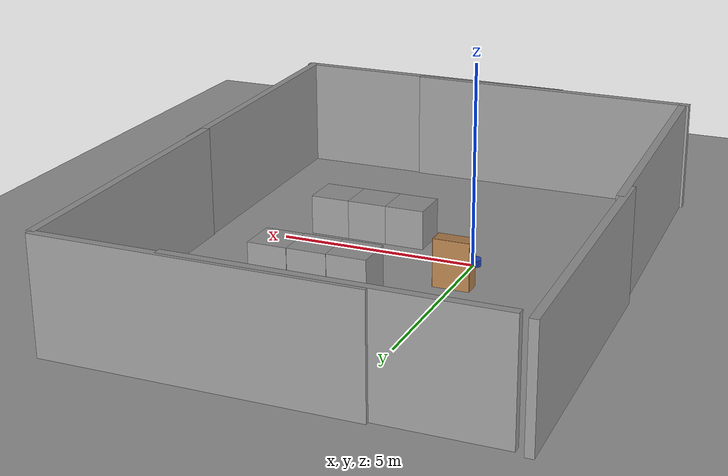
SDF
<sdf version="1.6">
 <world name="default">
  <light name="sun" type="directional">
   <pose>0 0 10 0 -0 0</pose>
   <diffuse>0.8 0.8 0.8 1</diffuse>
   <specular>0.2 0.2 0.2 1</specular>
   <attenuation>
    <range>1000</range>
    <constant>0.9</constant>
    <linear>0.01</linear>
    <quadratic>0.001</quadratic>
   </attenuation>
   <direction>0.5 0.1 -0.9</direction>
  </light>
  <scene><ambient>0.4 0.4 0.4 1</ambient><background>0.7 0.7 0.7 1</background><shadows>1</shadows></scene>
  <physics name="default_physics" default="0" type="ode">
   <max_step_size>0.01</max_step_size>
   <real_time_factor>1</real_time_factor>
   <real_time_update_rate>100</real_time_update_rate>
  </physics>
  <model name="bookshelf">
   <static>1</static>
   <link name="link">
    <inertial><mass>1</mass></inertial>
    <collision name="back">
     <pose>0 0.005 0.6 0 -0 0</pose>
     <geometry><box><size>0.9 0.01 1.2</size></box></geometry>
    </collision>
    <visual name="visual1">
     <pose>0 0.005 0.6 0 -0 0</pose>
     <geometry><box><size>0.9 0.01 1.2</size></box></geometry>
     <material>
      <script><uri>file://media/materials/scripts/gazebo.material</uri><name>Gazebo/Wood</name></script>
     </material>
    </visual>
    <collision name="left_side">
     <pose>0.45 -0.195 0.6 0 -0 0</pose>
     <geometry><box><size>0.02 0.4 1.2</size></box></geometry>
    </collision>
    <visual name="visual2">
     <pose>0.45 -0.195 0.6 0 -0 0</pose>
     <geometry><box><size>0.02 0.4 1.2</size></box></geometry>
     <material>
      <script><uri>file://media/materials/scripts/gazebo.material</uri><name>Gazebo/Wood</name></script>
     </material>
    </visual>
    <collision name="right_side">
     <pose>-0.45 -0.195 0.6 0 -0 0</pose>
     <geometry><box><size>0.02 0.4 1.2</size></box></geometry>
    </collision>
    <visual name="visual3">
     <pose>-0.45 -0.195 0.6 0 -0 0</pose>
     <geometry><box><size>0.02 0.4 1.2</size></box></geometry>
     <material>
      <script><uri>file://media/materials/scripts/gazebo.material</uri><name>Gazebo/Wood</name></script>
     </material>
    </visual>
    <collision name="bottom">
     <pose>0 -0.195 0.03 0 -0 0</pose>
     <geometry><box><size>0.88 0.4 0.06</size></box></geometry>
    </collision>
    <visual name="visual4">
     <pose>0 -0.195 0.03 0 -0 0</pose>
     <geometry><box><size>0.88 0.4 0.06</size></box></geometry>
     <material>
      <script><uri>file://media/materials/scripts/gazebo.material</uri><name>Gazebo/Wood</name></script>
     </material>
    </visual>
    <collision name="top">
     <pose>0 -0.195 1.19 0 -0 0</pose>
     <geometry><box><size>0.88 0.4 0.02</size></box></geometry>
    </collision>
    <visual name="visual5">
     <pose>0 -0.195 1.19 0 -0 0</pose>
     <geometry><box><size>0.88 0.4 0.02</size></box></geometry>
     <material>
      <script><uri>file://media/materials/scripts/gazebo.material</uri><name>Gazebo/Wood</name></script>
     </material>
    </visual>
    <collision name="low_shelf">
     <pose>0 -0.195 0.43 0 -0 0</pose>
     <geometry><box><size>0.88 0.4 0.02</size></box></geometry>
    </collision>
    <visual name="visual6">
     <pose>0 -0.195 0.43 0 -0 0</pose>
     <geometry><box><size>0.88 0.4 0.02</size></box></geometry>
     <material>
      <script><uri>file://media/materials/scripts/gazebo.material</uri><name>Gazebo/Wood</name></script>
     </material>
    </visual>
    <collision name="high_shelf">
     <pose>0 -0.195 0.8 0 -0 0</pose>
     <geometry><box><size>0.88 0.4 0.02</size></box></geometry>
    </collision>
    <visual name="visual7">
     <pose>0 -0.195 0.8 0 -0 0</pose>
     <geometry><box><size>0.88 0.4 0.02</size></box></geometry>
     <material>
      <script><uri>file://media/materials/scripts/gazebo.material</uri><name>Gazebo/Wood</name></script>
     </material>
    </visual>
    <velocity_decay><linear>0</linear><angular>0</angular></velocity_decay>
   </link>
   <pose>0 1.53026 0 0 -0 0</pose>
  </model>
  <model name="ground_plane_0">
   <static>1</static>
   <link name="link">
    <collision name="collision">
     <geometry><plane><normal>0 0 1</normal><size>100 100</size></plane></geometry>
     <surface><friction><ode><mu>100</mu><mu2>50</mu2></ode></friction></surface>
    </collision>
    <visual name="visual">
     <cast_shadows>0</cast_shadows>
     <geometry><plane><normal>0 0 1</normal><size>100 100</size></plane></geometry>
     <material>
      <script><uri>file://media/materials/scripts/gazebo.material</uri><name>Gazebo/Grey</name></script>
     </material>
    </visual>
    <velocity_decay><linear>0</linear><angular>0</angular></velocity_decay>
   </link>
   <pose>0.497681 0 0 0 -0 0</pose>
  </model>
  <gravity>0 0 -9.8</gravity>
  <magnetic_field>6e-06 2.3e-05 -4.2e-05</magnetic_field>
  <atmosphere type="adiabatic"/>
  <spherical_coordinates>
   <surface_model>EARTH_WGS84</surface_model>
   <latitude_deg>0</latitude_deg>
   <longitude_deg>0</longitude_deg>
   <elevation>0</elevation>
   <heading_deg>0</heading_deg>
  </spherical_coordinates>
  <model name="mbot">
   <link name="base_footprint">
    <inertial>
     <pose>0 0 0.110522 0 -0 0</pose>
     <mass>20.1</mass>
     <inertia><ixx>0.253764</ixx><ixy>0</ixy><ixz>0</ixz><iyy>0.253764</iyy><iyz>0</iyz><izz>0.41</izz></inertia>
    </inertial>
    <collision name="base_footprint_fixed_joint_lump__base_link_collision">
     <pose>0 0 0.11 0 -0 0</pose>
     <geometry><cylinder><length>0.16</length><radius>0.2</radius></cylinder></geometry>
    </collision>
    <collision name="base_footprint_fixed_joint_lump__laser_link_collision_1">
     <pose>0 0 0.215 0 -0 0</pose>
     <geometry><cylinder><length>0.06</length><radius>0.05</radius></cylinder></geometry>
    </collision>
    <visual name="base_footprint_visual">
     <geometry><box><size>0.001 0.001 0.001</size></box></geometry>
     <material><script><uri>__default__</uri><name>__default__</name></script></material>
    </visual>
    <visual name="base_footprint_fixed_joint_lump__base_link_visual_1">
     <pose>0 0 0.11 0 -0 0</pose>
     <geometry><cylinder><length>0.16</length><radius>0.2</radius></cylinder></geometry>
     <material>
      <script><name>Gazebo/Blue</name><uri>file://media/materials/scripts/gazebo.material</uri></script>
     </material>
    </visual>
    <visual name="base_footprint_fixed_joint_lump__laser_link_visual_2">
     <pose>0 0 0.215 0 -0 0</pose>
     <geometry><cylinder><length>0.05</length><radius>0.05</radius></cylinder></geometry>
     <material>
      <script><name>Gazebo/Black</name><uri>file://media/materials/scripts/gazebo.material</uri></script>
     </material>
    </visual>
    <sensor name="rplidar" type="ray">
     <visualize>0</visualize>
     <update_rate>5.5</update_rate>
     <ray>
      <scan>
       <horizontal>
        <samples>360</samples>
        <resolution>1</resolution>
        <min_angle>-3</min_angle>
        <max_angle>3</max_angle>
       </horizontal>
       <vertical><samples>1</samples><min_angle>0</min_angle><max_angle>0</max_angle></vertical>
      </scan>
      <range><min>0.1</min><max>6</max><resolution>0.01</resolution></range>
      <noise><type>gaussian</type><mean>0</mean><stddev>0.01</stddev></noise>
     </ray>
     <plugin name="gazebo_rplidar" filename="libgazebo_ros_laser.so">
      <topicName>/scan</topicName>
      <frameName>laser_link</frameName>
      <robotNamespace>/</robotNamespace>
     </plugin>
     <pose>0 0 0.215 0 -0 0</pose>
    </sensor>
   </link>
   <link name="back_caster_link">
    <pose>0.18 0 0.015 0 -0 0</pose>
    <inertial>
     <mass>0.5</mass>
     <inertia><ixx>4.5e-05</ixx><ixy>0</ixy><ixz>0</ixz><iyy>4.5e-05</iyy><iyz>0</iyz><izz>4.5e-05</izz></inertia>
    </inertial>
    <collision name="back_caster_link_collision">
     <geometry><sphere><radius>0.015</radius></sphere></geometry>
    </collision>
    <visual name="back_caster_link_visual">
     <geometry><sphere><radius>0.015</radius></sphere></geometry>
     <material>
      <script><name>Gazebo/Black</name><uri>file://media/materials/scripts/gazebo.material</uri></script>
     </material>
    </visual>
   </link>
   <joint name="back_caster_joint" type="revolute">
    <child>back_caster_link</child>
    <parent>base_footprint</parent>
    <axis>
     <xyz>0 1 0</xyz>
     <limit><lower>-1e+16</lower><upper>1e+16</upper></limit>
     <dynamics><spring_reference>0</spring_reference><spring_stiffness>0</spring_stiffness></dynamics>
     <use_parent_model_frame>1</use_parent_model_frame>
    </axis>
   </joint>
   <link name="front_caster_link">
    <pose>-0.18 0 0.015 0 -0 0</pose>
    <inertial>
     <mass>0.5</mass>
     <inertia><ixx>4.5e-05</ixx><ixy>0</ixy><ixz>0</ixz><iyy>4.5e-05</iyy><iyz>0</iyz><izz>4.5e-05</izz></inertia>
    </inertial>
    <collision name="front_caster_link_collision">
     <geometry><sphere><radius>0.015</radius></sphere></geometry>
    </collision>
    <visual name="front_caster_link_visual">
     <geometry><sphere><radius>0.015</radius></sphere></geometry>
     <material>
      <script><name>Gazebo/Black</name><uri>file://media/materials/scripts/gazebo.material</uri></script>
     </material>
    </visual>
   </link>
   <joint name="front_caster_joint" type="revolute">
    <child>front_caster_link</child>
    <parent>base_footprint</parent>
    <axis>
     <xyz>0 1 0</xyz>
     <limit><lower>-1e+16</lower><upper>1e+16</upper></limit>
     <dynamics><spring_reference>0</spring_reference><spring_stiffness>0</spring_stiffness></dynamics>
     <use_parent_model_frame>1</use_parent_model_frame>
    </axis>
   </joint>
   <link name="left_wheel_link">
    <pose>0 -0.19 0.06 0 -0 0</pose>
    <inertial>
     <mass>2</mass>
     <inertia>
      <ixx>0.00190417</ixx>
      <ixy>0</ixy>
      <ixz>0</ixz>
      <iyy>0.00190417</iyy>
      <iyz>0</iyz>
      <izz>0.0036</izz>
     </inertia>
    </inertial>
    <collision name="left_wheel_link_collision">
     <pose>0 0 0 1.5708 -0 0</pose>
     <geometry><cylinder><length>0.025</length><radius>0.06</radius></cylinder></geometry>
    </collision>
    <visual name="left_wheel_link_visual">
     <pose>0 0 0 1.5708 -0 0</pose>
     <geometry><cylinder><length>0.025</length><radius>0.06</radius></cylinder></geometry>
     <material>
      <script><name>Gazebo/Gray</name><uri>file://media/materials/scripts/gazebo.material</uri></script>
     </material>
    </visual>
   </link>
   <joint name="left_wheel_joint" type="revolute">
    <child>left_wheel_link</child>
    <parent>base_footprint</parent>
    <axis>
     <xyz>0 1 0</xyz>
     <limit><lower>-1e+16</lower><upper>1e+16</upper></limit>
     <dynamics><spring_reference>0</spring_reference><spring_stiffness>0</spring_stiffness></dynamics>
     <use_parent_model_frame>1</use_parent_model_frame>
    </axis>
   </joint>
   <link name="right_wheel_link">
    <pose>0 0.19 0.06 0 -0 0</pose>
    <inertial>
     <mass>2</mass>
     <inertia>
      <ixx>0.00190417</ixx>
      <ixy>0</ixy>
      <ixz>0</ixz>
      <iyy>0.00190417</iyy>
      <iyz>0</iyz>
      <izz>0.0036</izz>
     </inertia>
    </inertial>
    <collision name="right_wheel_link_collision">
     <pose>0 0 0 1.5708 -0 0</pose>
     <geometry><cylinder><length>0.025</length><radius>0.06</radius></cylinder></geometry>
    </collision>
    <visual name="right_wheel_link_visual">
     <pose>0 0 0 1.5708 -0 0</pose>
     <geometry><cylinder><length>0.025</length><radius>0.06</radius></cylinder></geometry>
     <material>
      <script><name>Gazebo/Gray</name><uri>file://media/materials/scripts/gazebo.material</uri></script>
     </material>
    </visual>
   </link>
   <joint name="right_wheel_joint" type="revolute">
    <child>right_wheel_link</child>
    <parent>base_footprint</parent>
    <axis>
     <xyz>0 1 0</xyz>
     <limit><lower>-1e+16</lower><upper>1e+16</upper></limit>
     <dynamics><spring_reference>0</spring_reference><spring_stiffness>0</spring_stiffness></dynamics>
     <use_parent_model_frame>1</use_parent_model_frame>
    </axis>
   </joint>
   <static>0</static>
   <plugin name="differential_drive_controller" filename="libgazebo_ros_diff_drive.so">
    <rosDebugLevel>Debug</rosDebugLevel>
    <publishWheelTF>true</publishWheelTF>
    <robotNamespace>/</robotNamespace>
    <publishTf>1</publishTf>
    <publishWheelJointState>true</publishWheelJointState>
    <alwaysOn>true</alwaysOn>
    <updateRate>100.0</updateRate>
    <legacyMode>true</legacyMode>
    <leftJoint>left_wheel_joint</leftJoint>
    <rightJoint>right_wheel_joint</rightJoint>
    <wheelSeparation>0.38</wheelSeparation>
    <wheelDiameter>0.12</wheelDiameter>
    <broadcastTF>1</broadcastTF>
    <wheelTorque>30</wheelTorque>
    <wheelAcceleration>1.8</wheelAcceleration>
    <commandTopic>cmd_vel</commandTopic>
    <odometryFrame>odom</odometryFrame>
    <odometryTopic>odom</odometryTopic>
    <robotBaseFrame>base_footprint</robotBaseFrame>
   </plugin>
   <pose>-0.000706 0.003798 -0.000968 1.3e-05 -1.1e-05 0.000172</pose>
  </model>
  <model name="test9">
   <link name="link_0">
    <pose>0.721754 0.727218 0.235294 0 -0 0</pose>
    <inertial>
     <mass>1</mass>
     <inertia>
      <ixx>0.166667</ixx>
      <ixy>0</ixy>
      <ixz>0</ixz>
      <iyy>0.166667</iyy>
      <iyz>0</iyz>
      <izz>0.166667</izz>
     </inertia>
    </inertial>
    <visual name="visual">
     <geometry><box><size>1 1 1</size></box></geometry>
     <material>
      <lighting>1</lighting>
      <script><uri>file://media/materials/scripts/gazebo.material</uri><name>Gazebo/Grey</name></script>
      <ambient>0.3 0.3 0.3 1</ambient>
      <diffuse>0.7 0.7 0.7 1</diffuse>
      <specular>0.01 0.01 0.01 1</specular>
      <emissive>0 0 0 1</emissive>
     </material>
    </visual>
    <collision name="collision">
     <geometry><box><size>1 1 1</size></box></geometry>
     <surface>
      <friction>
       <ode><mu>1</mu><mu2>1</mu2><fdir1>0 0 0</fdir1><slip1>0</slip1><slip2>0</slip2></ode>
       <torsional>
        <coefficient>1</coefficient>
        <patch_radius>0</patch_radius>
        <surface_radius>0</surface_radius>
        <use_patch_radius>1</use_patch_radius>
        <ode><slip>0</slip></ode>
       </torsional>
      </friction>
      <bounce><restitution_coefficient>0</restitution_coefficient><threshold>1e+06</threshold></bounce>
      <contact>
       <collide_without_contact>0</collide_without_contact>
       <collide_without_contact_bitmask>1</collide_without_contact_bitmask>
       <collide_bitmask>1</collide_bitmask>
       <ode>
        <soft_cfm>0</soft_cfm>
        <soft_erp>0.2</soft_erp>
        <kp>1e+13</kp>
        <kd>1</kd>
        <max_vel>0.01</max_vel>
        <min_depth>0</min_depth>
       </ode>
       <bullet>
        <split_impulse>1</split_impulse>
        <split_impulse_penetration_threshold>-0.01</split_impulse_penetration_threshold>
        <soft_cfm>0</soft_cfm>
        <soft_erp>0.2</soft_erp>
        <kp>1e+13</kp>
        <kd>1</kd>
       </bullet>
      </contact>
     </surface>
    </collision>
   </link>
   <link name="link_1">
    <pose>-0.274834 0.712769 0.235294 0 -0 0</pose>
    <inertial>
     <mass>1</mass>
     <inertia>
      <ixx>0.166667</ixx>
      <ixy>0</ixy>
      <ixz>0</ixz>
      <iyy>0.166667</iyy>
      <iyz>0</iyz>
      <izz>0.166667</izz>
     </inertia>
    </inertial>
    <visual name="visual">
     <geometry><box><size>1 1 1</size></box></geometry>
     <material>
      <lighting>1</lighting>
      <script><uri>file://media/materials/scripts/gazebo.material</uri><name>Gazebo/Grey</name></script>
      <ambient>0.3 0.3 0.3 1</ambient>
      <diffuse>0.7 0.7 0.7 1</diffuse>
      <specular>0.01 0.01 0.01 1</specular>
      <emissive>0 0 0 1</emissive>
     </material>
    </visual>
    <collision name="collision">
     <geometry><box><size>1 1 1</size></box></geometry>
     <surface>
      <friction>
       <ode><mu>1</mu><mu2>1</mu2><fdir1>0 0 0</fdir1><slip1>0</slip1><slip2>0</slip2></ode>
       <torsional>
        <coefficient>1</coefficient>
        <patch_radius>0</patch_radius>
        <surface_radius>0</surface_radius>
        <use_patch_radius>1</use_patch_radius>
        <ode><slip>0</slip></ode>
       </torsional>
      </friction>
      <bounce><restitution_coefficient>0</restitution_coefficient><threshold>1e+06</threshold></bounce>
      <contact>
       <collide_without_contact>0</collide_without_contact>
       <collide_without_contact_bitmask>1</collide_without_contact_bitmask>
       <collide_bitmask>1</collide_bitmask>
       <ode>
        <soft_cfm>0</soft_cfm>
        <soft_erp>0.2</soft_erp>
        <kp>1e+13</kp>
        <kd>1</kd>
        <max_vel>0.01</max_vel>
        <min_depth>0</min_depth>
       </ode>
       <bullet>
        <split_impulse>1</split_impulse>
        <split_impulse_penetration_threshold>-0.01</split_impulse_penetration_threshold>
        <soft_cfm>0</soft_cfm>
        <soft_erp>0.2</soft_erp>
        <kp>1e+13</kp>
        <kd>1</kd>
       </bullet>
      </contact>
     </surface>
    </collision>
   </link>
   <link name="link_2">
    <pose>-0.385724 3.6831 0.235294 0 -0 0</pose>
    <inertial>
     <mass>1</mass>
     <inertia>
      <ixx>0.166667</ixx>
      <ixy>0</ixy>
      <ixz>0</ixz>
      <iyy>0.166667</iyy>
      <iyz>0</iyz>
      <izz>0.166667</izz>
     </inertia>
    </inertial>
    <visual name="visual">
     <geometry><box><size>1 1 1</size></box></geometry>
     <material>
      <lighting>1</lighting>
      <script><uri>file://media/materials/scripts/gazebo.material</uri><name>Gazebo/Grey</name></script>
      <ambient>0.3 0.3 0.3 1</ambient>
      <diffuse>0.7 0.7 0.7 1</diffuse>
      <specular>0.01 0.01 0.01 1</specular>
      <emissive>0 0 0 1</emissive>
     </material>
    </visual>
    <collision name="collision">
     <geometry><box><size>1 1 1</size></box></geometry>
     <surface>
      <friction>
       <ode><mu>1</mu><mu2>1</mu2><fdir1>0 0 0</fdir1><slip1>0</slip1><slip2>0</slip2></ode>
       <torsional>
        <coefficient>1</coefficient>
        <patch_radius>0</patch_radius>
        <surface_radius>0</surface_radius>
        <use_patch_radius>1</use_patch_radius>
        <ode><slip>0</slip></ode>
       </torsional>
      </friction>
      <bounce><restitution_coefficient>0</restitution_coefficient><threshold>1e+06</threshold></bounce>
      <contact>
       <collide_without_contact>0</collide_without_contact>
       <collide_without_contact_bitmask>1</collide_without_contact_bitmask>
       <collide_bitmask>1</collide_bitmask>
       <ode>
        <soft_cfm>0</soft_cfm>
        <soft_erp>0.2</soft_erp>
        <kp>1e+13</kp>
        <kd>1</kd>
        <max_vel>0.01</max_vel>
        <min_depth>0</min_depth>
       </ode>
       <bullet>
        <split_impulse>1</split_impulse>
        <split_impulse_penetration_threshold>-0.01</split_impulse_penetration_threshold>
        <soft_cfm>0</soft_cfm>
        <soft_erp>0.2</soft_erp>
        <kp>1e+13</kp>
        <kd>1</kd>
       </bullet>
      </contact>
     </surface>
    </collision>
   </link>
   <link name="link_3">
    <pose>0.607455 3.7021 0.235294 0 -0 0</pose>
    <inertial>
     <mass>1</mass>
     <inertia>
      <ixx>0.166667</ixx>
      <ixy>0</ixy>
      <ixz>0</ixz>
      <iyy>0.166667</iyy>
      <iyz>0</iyz>
      <izz>0.166667</izz>
     </inertia>
    </inertial>
    <visual name="visual">
     <geometry><box><size>1 1 1</size></box></geometry>
     <material>
      <lighting>1</lighting>
      <script><uri>file://media/materials/scripts/gazebo.material</uri><name>Gazebo/Grey</name></script>
      <ambient>0.3 0.3 0.3 1</ambient>
      <diffuse>0.7 0.7 0.7 1</diffuse>
      <specular>0.01 0.01 0.01 1</specular>
      <emissive>0 0 0 1</emissive>
     </material>
    </visual>
    <collision name="collision">
     <geometry><box><size>1 1 1</size></box></geometry>
     <surface>
      <friction>
       <ode><mu>1</mu><mu2>1</mu2><fdir1>0 0 0</fdir1><slip1>0</slip1><slip2>0</slip2></ode>
       <torsional>
        <coefficient>1</coefficient>
        <patch_radius>0</patch_radius>
        <surface_radius>0</surface_radius>
        <use_patch_radius>1</use_patch_radius>
        <ode><slip>0</slip></ode>
       </torsional>
      </friction>
      <bounce><restitution_coefficient>0</restitution_coefficient><threshold>1e+06</threshold></bounce>
      <contact>
       <collide_without_contact>0</collide_without_contact>
       <collide_without_contact_bitmask>1</collide_without_contact_bitmask>
       <collide_bitmask>1</collide_bitmask>
       <ode>
        <soft_cfm>0</soft_cfm>
        <soft_erp>0.2</soft_erp>
        <kp>1e+13</kp>
        <kd>1</kd>
        <max_vel>0.01</max_vel>
        <min_depth>0</min_depth>
       </ode>
       <bullet>
        <split_impulse>1</split_impulse>
        <split_impulse_penetration_threshold>-0.01</split_impulse_penetration_threshold>
        <soft_cfm>0</soft_cfm>
        <soft_erp>0.2</soft_erp>
        <kp>1e+13</kp>
        <kd>1</kd>
       </bullet>
      </contact>
     </surface>
    </collision>
   </link>
   <link name="link_4">
    <pose>1.59981 3.68474 0.235294 0 -0 0</pose>
    <inertial>
     <mass>1</mass>
     <inertia>
      <ixx>0.166667</ixx>
      <ixy>0</ixy>
      <ixz>0</ixz>
      <iyy>0.166667</iyy>
      <iyz>0</iyz>
      <izz>0.166667</izz>
     </inertia>
    </inertial>
    <visual name="visual">
     <geometry><box><size>1 1 1</size></box></geometry>
     <material>
      <lighting>1</lighting>
      <script><uri>file://media/materials/scripts/gazebo.material</uri><name>Gazebo/Grey</name></script>
      <ambient>0.3 0.3 0.3 1</ambient>
      <diffuse>0.7 0.7 0.7 1</diffuse>
      <specular>0.01 0.01 0.01 1</specular>
      <emissive>0 0 0 1</emissive>
     </material>
    </visual>
    <collision name="collision">
     <geometry><box><size>1 1 1</size></box></geometry>
     <surface>
      <friction>
       <ode><mu>1</mu><mu2>1</mu2><fdir1>0 0 0</fdir1><slip1>0</slip1><slip2>0</slip2></ode>
       <torsional>
        <coefficient>1</coefficient>
        <patch_radius>0</patch_radius>
        <surface_radius>0</surface_radius>
        <use_patch_radius>1</use_patch_radius>
        <ode><slip>0</slip></ode>
       </torsional>
      </friction>
      <bounce><restitution_coefficient>0</restitution_coefficient><threshold>1e+06</threshold></bounce>
      <contact>
       <collide_without_contact>0</collide_without_contact>
       <collide_without_contact_bitmask>1</collide_without_contact_bitmask>
       <collide_bitmask>1</collide_bitmask>
       <ode>
        <soft_cfm>0</soft_cfm>
        <soft_erp>0.2</soft_erp>
        <kp>1e+13</kp>
        <kd>1</kd>
        <max_vel>0.01</max_vel>
        <min_depth>0</min_depth>
       </ode>
       <bullet>
        <split_impulse>1</split_impulse>
        <split_impulse_penetration_threshold>-0.01</split_impulse_penetration_threshold>
        <soft_cfm>0</soft_cfm>
        <soft_erp>0.2</soft_erp>
        <kp>1e+13</kp>
        <kd>1</kd>
       </bullet>
      </contact>
     </surface>
    </collision>
   </link>
   <link name="link_5">
    <pose>1.7198 0.739095 0.235294 0 -0 0</pose>
    <inertial>
     <mass>1</mass>
     <inertia>
      <ixx>0.166667</ixx>
      <ixy>0</ixy>
      <ixz>0</ixz>
      <iyy>0.166667</iyy>
      <iyz>0</iyz>
      <izz>0.166667</izz>
     </inertia>
    </inertial>
    <visual name="visual">
     <geometry><box><size>1 1 1</size></box></geometry>
     <material>
      <lighting>1</lighting>
      <script><uri>file://media/materials/scripts/gazebo.material</uri><name>Gazebo/Grey</name></script>
      <ambient>0.3 0.3 0.3 1</ambient>
      <diffuse>0.7 0.7 0.7 1</diffuse>
      <specular>0.01 0.01 0.01 1</specular>
      <emissive>0 0 0 1</emissive>
     </material>
    </visual>
    <collision name="collision">
     <geometry><box><size>1 1 1</size></box></geometry>
     <surface>
      <friction>
       <ode><mu>1</mu><mu2>1</mu2><fdir1>0 0 0</fdir1><slip1>0</slip1><slip2>0</slip2></ode>
       <torsional>
        <coefficient>1</coefficient>
        <patch_radius>0</patch_radius>
        <surface_radius>0</surface_radius>
        <use_patch_radius>1</use_patch_radius>
        <ode><slip>0</slip></ode>
       </torsional>
      </friction>
      <bounce><restitution_coefficient>0</restitution_coefficient><threshold>1e+06</threshold></bounce>
      <contact>
       <collide_without_contact>0</collide_without_contact>
       <collide_without_contact_bitmask>1</collide_without_contact_bitmask>
       <collide_bitmask>1</collide_bitmask>
       <ode>
        <soft_cfm>0</soft_cfm>
        <soft_erp>0.2</soft_erp>
        <kp>1e+13</kp>
        <kd>1</kd>
        <max_vel>0.01</max_vel>
        <min_depth>0</min_depth>
       </ode>
       <bullet>
        <split_impulse>1</split_impulse>
        <split_impulse_penetration_threshold>-0.01</split_impulse_penetration_threshold>
        <soft_cfm>0</soft_cfm>
        <soft_erp>0.2</soft_erp>
        <kp>1e+13</kp>
        <kd>1</kd>
       </bullet>
      </contact>
     </surface>
    </collision>
   </link>
   <link name="link_6">
    <pose>-0.309561 -2.66942 0.235294 0 -0 0</pose>
    <inertial>
     <mass>1</mass>
     <inertia>
      <ixx>0.166667</ixx>
      <ixy>0</ixy>
      <ixz>0</ixz>
      <iyy>0.166667</iyy>
      <iyz>0</iyz>
      <izz>0.166667</izz>
     </inertia>
    </inertial>
    <visual name="visual">
     <geometry><box><size>1 1 1</size></box></geometry>
     <material>
      <lighting>1</lighting>
      <script><uri>file://media/materials/scripts/gazebo.material</uri><name>Gazebo/Grey</name></script>
      <ambient>0.3 0.3 0.3 1</ambient>
      <diffuse>0.7 0.7 0.7 1</diffuse>
      <specular>0.01 0.01 0.01 1</specular>
      <emissive>0 0 0 1</emissive>
     </material>
    </visual>
    <collision name="collision">
     <geometry><box><size>1 1 1</size></box></geometry>
     <surface>
      <friction>
       <ode><mu>1</mu><mu2>1</mu2><fdir1>0 0 0</fdir1><slip1>0</slip1><slip2>0</slip2></ode>
       <torsional>
        <coefficient>1</coefficient>
        <patch_radius>0</patch_radius>
        <surface_radius>0</surface_radius>
        <use_patch_radius>1</use_patch_radius>
        <ode><slip>0</slip></ode>
       </torsional>
      </friction>
      <bounce><restitution_coefficient>0</restitution_coefficient><threshold>1e+06</threshold></bounce>
      <contact>
       <collide_without_contact>0</collide_without_contact>
       <collide_without_contact_bitmask>1</collide_without_contact_bitmask>
       <collide_bitmask>1</collide_bitmask>
       <ode>
        <soft_cfm>0</soft_cfm>
        <soft_erp>0.2</soft_erp>
        <kp>1e+13</kp>
        <kd>1</kd>
        <max_vel>0.01</max_vel>
        <min_depth>0</min_depth>
       </ode>
       <bullet>
        <split_impulse>1</split_impulse>
        <split_impulse_penetration_threshold>-0.01</split_impulse_penetration_threshold>
        <soft_cfm>0</soft_cfm>
        <soft_erp>0.2</soft_erp>
        <kp>1e+13</kp>
        <kd>1</kd>
       </bullet>
      </contact>
     </surface>
    </collision>
   </link>
   <link name="link_7">
    <pose>0.690439 -2.66942 0.235294 0 -0 0</pose>
    <inertial>
     <mass>1</mass>
     <inertia>
      <ixx>0.166667</ixx>
      <ixy>0</ixy>
      <ixz>0</ixz>
      <iyy>0.166667</iyy>
      <iyz>0</iyz>
      <izz>0.166667</izz>
     </inertia>
    </inertial>
    <visual name="visual">
     <geometry><box><size>1 1 1</size></box></geometry>
     <material>
      <lighting>1</lighting>
      <script><uri>file://media/materials/scripts/gazebo.material</uri><name>Gazebo/Grey</name></script>
      <ambient>0.3 0.3 0.3 1</ambient>
      <diffuse>0.7 0.7 0.7 1</diffuse>
      <specular>0.01 0.01 0.01 1</specular>
      <emissive>0 0 0 1</emissive>
     </material>
    </visual>
    <collision name="collision">
     <geometry><box><size>1 1 1</size></box></geometry>
     <surface>
      <friction>
       <ode><mu>1</mu><mu2>1</mu2><fdir1>0 0 0</fdir1><slip1>0</slip1><slip2>0</slip2></ode>
       <torsional>
        <coefficient>1</coefficient>
        <patch_radius>0</patch_radius>
        <surface_radius>0</surface_radius>
        <use_patch_radius>1</use_patch_radius>
        <ode><slip>0</slip></ode>
       </torsional>
      </friction>
      <bounce><restitution_coefficient>0</restitution_coefficient><threshold>1e+06</threshold></bounce>
      <contact>
       <collide_without_contact>0</collide_without_contact>
       <collide_without_contact_bitmask>1</collide_without_contact_bitmask>
       <collide_bitmask>1</collide_bitmask>
       <ode>
        <soft_cfm>0</soft_cfm>
        <soft_erp>0.2</soft_erp>
        <kp>1e+13</kp>
        <kd>1</kd>
        <max_vel>0.01</max_vel>
        <min_depth>0</min_depth>
       </ode>
       <bullet>
        <split_impulse>1</split_impulse>
        <split_impulse_penetration_threshold>-0.01</split_impulse_penetration_threshold>
        <soft_cfm>0</soft_cfm>
        <soft_erp>0.2</soft_erp>
        <kp>1e+13</kp>
        <kd>1</kd>
       </bullet>
      </contact>
     </surface>
    </collision>
   </link>
   <link name="link_8">
    <pose>1.69044 -2.66942 0.235294 0 -0 0</pose>
    <inertial>
     <mass>1</mass>
     <inertia>
      <ixx>0.166667</ixx>
      <ixy>0</ixy>
      <ixz>0</ixz>
      <iyy>0.166667</iyy>
      <iyz>0</iyz>
      <izz>0.166667</izz>
     </inertia>
    </inertial>
    <visual name="visual">
     <geometry><box><size>1 1 1</size></box></geometry>
     <material>
      <lighting>1</lighting>
      <script><uri>file://media/materials/scripts/gazebo.material</uri><name>Gazebo/Grey</name></script>
      <ambient>0.3 0.3 0.3 1</ambient>
      <diffuse>0.7 0.7 0.7 1</diffuse>
      <specular>0.01 0.01 0.01 1</specular>
      <emissive>0 0 0 1</emissive>
     </material>
    </visual>
    <collision name="collision">
     <geometry><box><size>1 1 1</size></box></geometry>
     <surface>
      <friction>
       <ode><mu>1</mu><mu2>1</mu2><fdir1>0 0 0</fdir1><slip1>0</slip1><slip2>0</slip2></ode>
       <torsional>
        <coefficient>1</coefficient>
        <patch_radius>0</patch_radius>
        <surface_radius>0</surface_radius>
        <use_patch_radius>1</use_patch_radius>
        <ode><slip>0</slip></ode>
       </torsional>
      </friction>
      <bounce><restitution_coefficient>0</restitution_coefficient><threshold>1e+06</threshold></bounce>
      <contact>
       <collide_without_contact>0</collide_without_contact>
       <collide_without_contact_bitmask>1</collide_without_contact_bitmask>
       <collide_bitmask>1</collide_bitmask>
       <ode>
        <soft_cfm>0</soft_cfm>
        <soft_erp>0.2</soft_erp>
        <kp>1e+13</kp>
        <kd>1</kd>
        <max_vel>0.01</max_vel>
        <min_depth>0</min_depth>
       </ode>
       <bullet>
        <split_impulse>1</split_impulse>
        <split_impulse_penetration_threshold>-0.01</split_impulse_penetration_threshold>
        <soft_cfm>0</soft_cfm>
        <soft_erp>0.2</soft_erp>
        <kp>1e+13</kp>
        <kd>1</kd>
       </bullet>
      </contact>
     </surface>
    </collision>
   </link>
   <model name="grey_wall">
    <static>1</static>
    <link name="link">
     <pose>0 0 1.4 0 -0 0</pose>
     <collision name="collision"><geometry><box><size>7.5 0.2 2.8</size></box></geometry></collision>
     <visual name="visual">
      <cast_shadows>0</cast_shadows>
      <geometry><box><size>7.5 0.2 2.8</size></box></geometry>
      <material>
       <script>
        <uri>model://grey_wall/materials/scripts</uri>
        <uri>model://grey_wall/materials/textures</uri>
        <name>vrc/grey_wall</name>
       </script>
      </material>
     </visual>
    </link>
    <pose>-2.30956 -7.66942 -0.264706 0 -0 0</pose>
   </model>
   <model name="grey_wall_0">
    <static>1</static>
    <link name="link">
     <pose>0 0 1.4 0 -0 0</pose>
     <collision name="collision"><geometry><box><size>7.5 0.2 2.8</size></box></geometry></collision>
     <visual name="visual">
      <cast_shadows>0</cast_shadows>
      <geometry><box><size>7.5 0.2 2.8</size></box></geometry>
      <material>
       <script>
        <uri>model://grey_wall/materials/scripts</uri>
        <uri>model://grey_wall/materials/textures</uri>
        <name>vrc/grey_wall</name>
       </script>
      </material>
     </visual>
    </link>
    <pose>1.13728 -7.72212 -0.264706 0 -0 0</pose>
   </model>
   <model name="grey_wall_1">
    <static>1</static>
    <link name="link">
     <pose>0 0 1.4 0 -0 0</pose>
     <collision name="collision"><geometry><box><size>7.5 0.2 2.8</size></box></geometry></collision>
     <visual name="visual">
      <cast_shadows>0</cast_shadows>
      <geometry><box><size>7.5 0.2 2.8</size></box></geometry>
      <material>
       <script>
        <uri>model://grey_wall/materials/scripts</uri>
        <uri>model://grey_wall/materials/textures</uri>
        <name>vrc/grey_wall</name>
       </script>
      </material>
     </visual>
    </link>
    <pose>-2.30956 6.33058 -0.264706 0 -0 0</pose>
   </model>
   <model name="grey_wall_2">
    <static>1</static>
    <link name="link">
     <pose>0 0 1.4 0 -0 0</pose>
     <collision name="collision"><geometry><box><size>7.5 0.2 2.8</size></box></geometry></collision>
     <visual name="visual">
      <cast_shadows>0</cast_shadows>
      <geometry><box><size>7.5 0.2 2.8</size></box></geometry>
      <material>
       <script>
        <uri>model://grey_wall/materials/scripts</uri>
        <uri>model://grey_wall/materials/textures</uri>
        <name>vrc/grey_wall</name>
       </script>
      </material>
     </visual>
    </link>
    <pose>0.645795 6.42289 -0.264706 0 -0 0</pose>
   </model>
   <model name="grey_wall_3">
    <static>1</static>
    <link name="link">
     <pose>0 0 1.4 0 -0 0</pose>
     <collision name="collision"><geometry><box><size>7.5 0.2 2.8</size></box></geometry></collision>
     <visual name="visual">
      <cast_shadows>0</cast_shadows>
      <geometry><box><size>7.5 0.2 2.8</size></box></geometry>
      <material>
       <script>
        <uri>model://grey_wall/materials/scripts</uri>
        <uri>model://grey_wall/materials/textures</uri>
        <name>vrc/grey_wall</name>
       </script>
      </material>
     </visual>
    </link>
    <pose>-6.02455 -3.97603 -0.264706 0 -0 1.60716</pose>
   </model>
   <model name="grey_wall_4">
    <static>1</static>
    <link name="link">
     <pose>0 0 1.4 0 -0 0</pose>
     <collision name="collision"><geometry><box><size>7.5 0.2 2.8</size></box></geometry></collision>
     <visual name="visual">
      <cast_shadows>0</cast_shadows>
      <geometry><box><size>7.5 0.2 2.8</size></box></geometry>
      <material>
       <script>
        <uri>model://grey_wall/materials/scripts</uri>
        <uri>model://grey_wall/materials/textures</uri>
        <name>vrc/grey_wall</name>
       </script>
      </material>
     </visual>
    </link>
    <pose>-6.29848 2.80667 -0.264706 0 -0 1.58999</pose>
   </model>
   <model name="grey_wall_5">
    <static>1</static>
    <link name="link">
     <pose>0 0 1.4 0 -0 0</pose>
     <collision name="collision"><geometry><box><size>7.5 0.2 2.8</size></box></geometry></collision>
     <visual name="visual">
      <cast_shadows>0</cast_shadows>
      <geometry><box><size>7.5 0.2 2.8</size></box></geometry>
      <material>
       <script>
        <uri>model://grey_wall/materials/scripts</uri>
        <uri>model://grey_wall/materials/textures</uri>
        <name>vrc/grey_wall</name>
       </script>
      </material>
     </visual>
    </link>
    <pose>4.64311 -4.07719 -0.264706 0 -0 1.59652</pose>
   </model>
   <model name="grey_wall_6">
    <static>1</static>
    <link name="link">
     <pose>0 0 1.4 0 -0 0</pose>
     <collision name="collision"><geometry><box><size>7.5 0.2 2.8</size></box></geometry></collision>
     <visual name="visual">
      <cast_shadows>0</cast_shadows>
      <geometry><box><size>7.5 0.2 2.8</size></box></geometry>
      <material>
       <script>
        <uri>model://grey_wall/materials/scripts</uri>
        <uri>model://grey_wall/materials/textures</uri>
        <name>vrc/grey_wall</name>
       </script>
      </material>
     </visual>
    </link>
    <pose>4.45636 2.64384 -0.264706 0 -0 1.5919</pose>
   </model>
   <static>0</static>
   <pose>2.30956 1.66942 0.264706 0 -0 0</pose>
  </model>
 </world>
</sdf>
